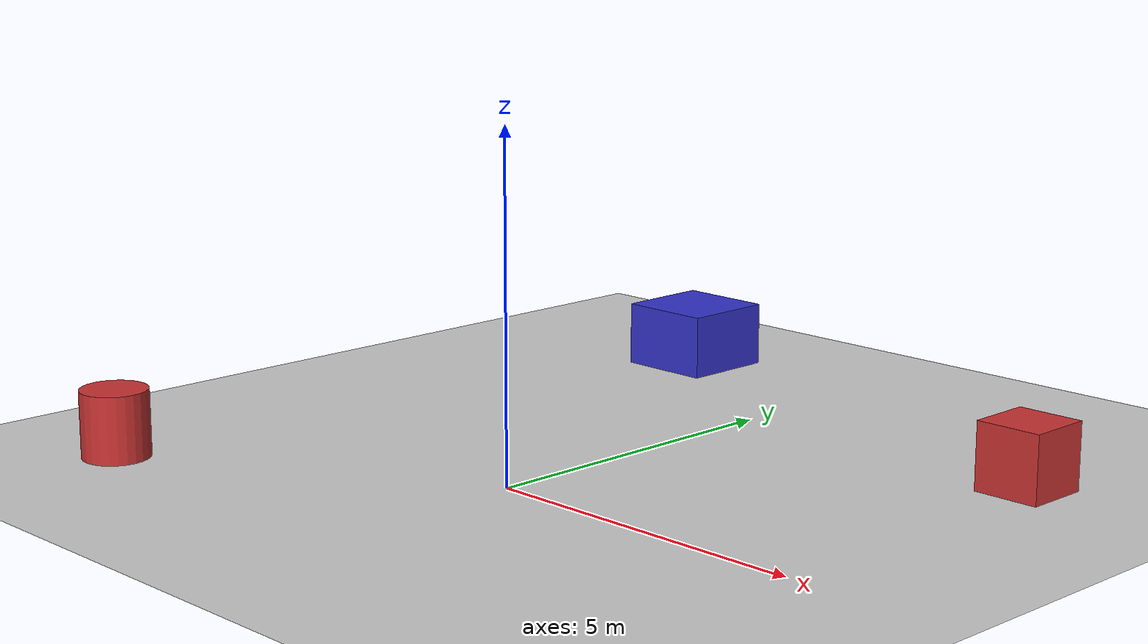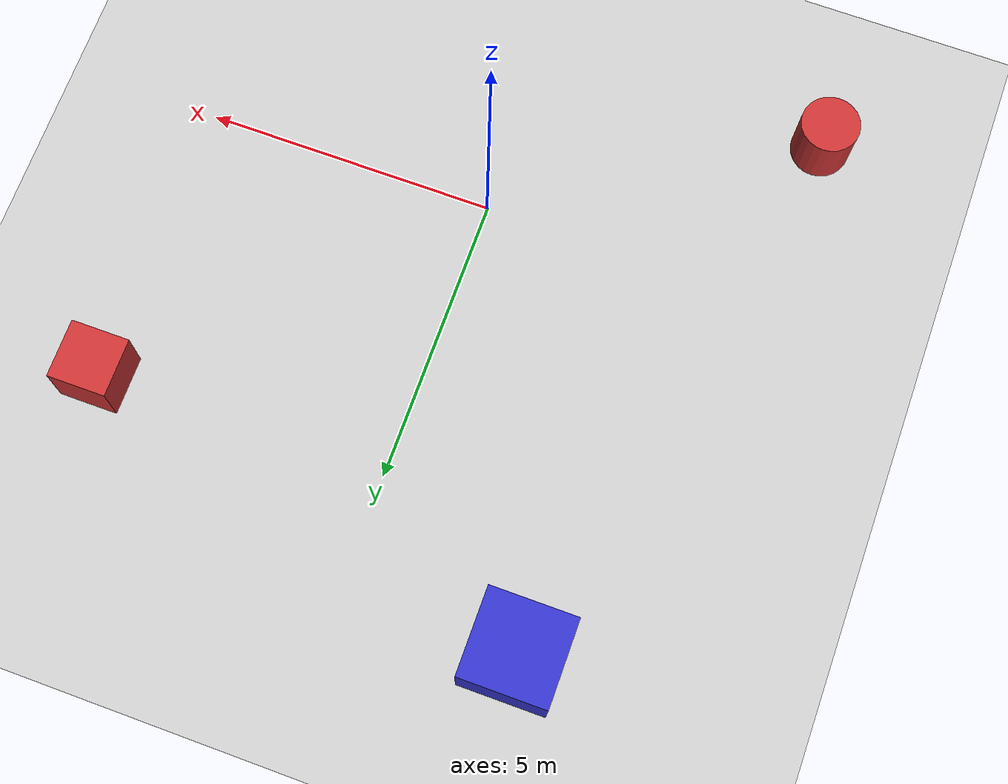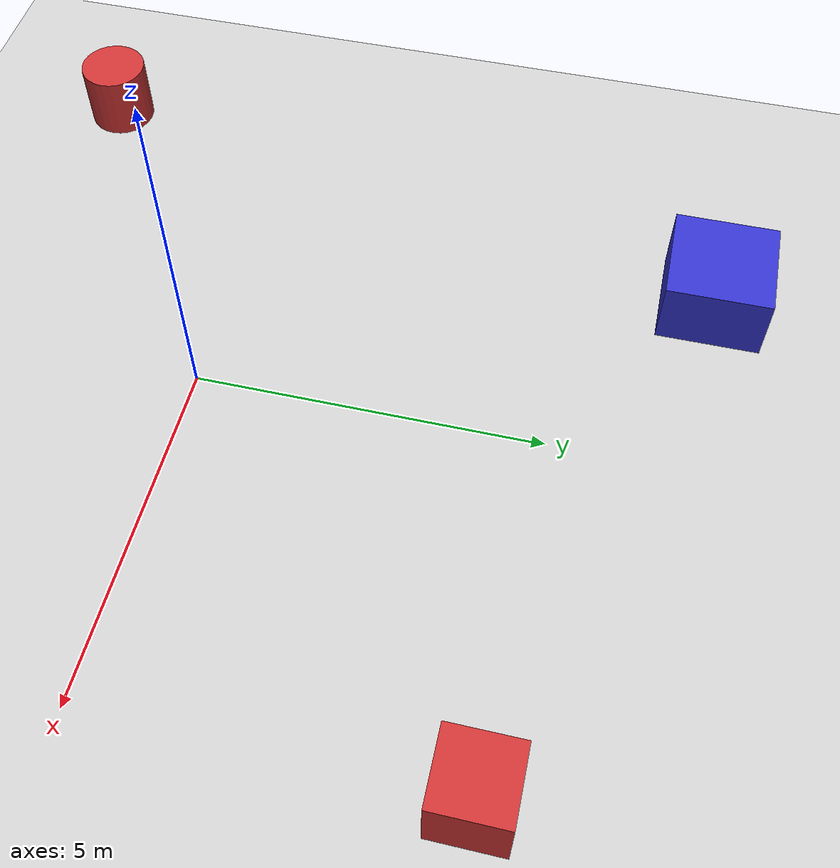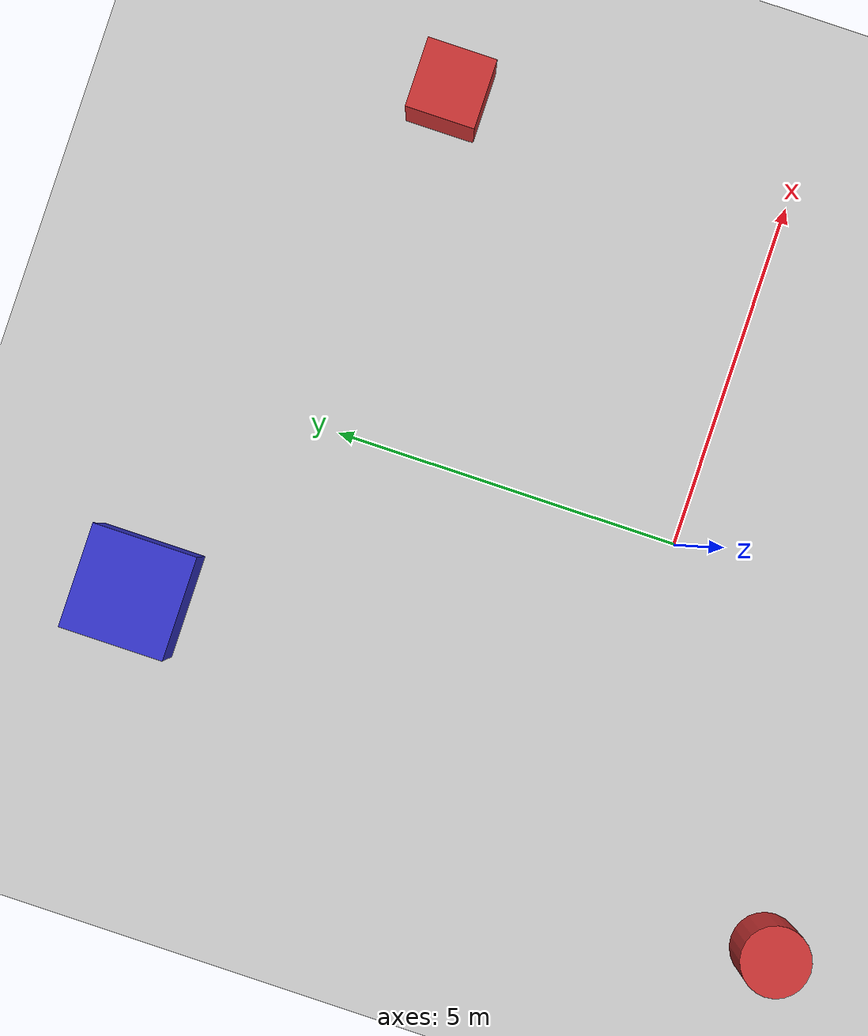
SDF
<?xml version="1.0"?>
<sdf version="1.6">
  <world name="rover_world">
    <include>
      <uri>model://sun</uri>
    </include>

    <include>
      <uri>model://ground_plane</uri>
    </include>

    <!-- Obstacle 1: Red Box -->
    <model name="obstacle1">
      <static>true</static>
      <pose>5 5 0.5 0 0 0</pose>
      <link name="link">
        <collision name="collision">
          <geometry>
            <box>
              <size>1 1 1</size>
            </box>
          </geometry>
        </collision>
        <visual name="visual">
          <geometry>
            <box>
              <size>1 1 1</size>
            </box>
          </geometry>
          <material>
            <ambient>0.8 0.2 0.2 1</ambient>
            <diffuse>0.8 0.2 0.2 1</diffuse>
          </material>
        </visual>
      </link>
    </model>

    <!-- Obstacle 2: Blue Box -->
    <model name="obstacle2">
      <static>true</static>
      <pose>-3 7 0.5 0 0 0</pose>
      <link name="link">
        <collision name="collision">
          <geometry>
            <box>
              <size>1.5 1.5 1</size>
            </box>
          </geometry>
        </collision>
        <visual name="visual">
          <geometry>
            <box>
              <size>1.5 1.5 1</size>
            </box>
          </geometry>
          <material>
            <ambient>0.2 0.2 0.8 1</ambient>
            <diffuse>0.2 0.2 0.8 1</diffuse>
          </material>
        </visual>
      </link>
    </model>

    <!-- Obstacle 3: Red Cylinder -->
    <model name="obstacle3">
      <static>true</static>
      <pose>-5 -3 0.5 0 0 0</pose>
      <link name="link">
        <collision name="collision">
          <geometry>
            <cylinder>
              <radius>0.5</radius>
              <length>1.0</length>
            </cylinder>
          </geometry>
        </collision>
        <visual name="visual">
          <geometry>
            <cylinder>
              <radius>0.5</radius>
              <length>1.0</length>
            </cylinder>
          </geometry>
          <material>
            <ambient>0.8 0.2 0.2 1</ambient>
            <diffuse>0.8 0.2 0.2 1</diffuse>
          </material>
        </visual>
      </link>
    </model>

    <physics name="default_physics" default="true" type="ode">
      <max_step_size>0.001</max_step_size>
      <real_time_factor>1.0</real_time_factor>
      <real_time_update_rate>1000.0</real_time_update_rate>
    </physics>

    <scene>
      <ambient>0.4 0.4 0.4 1</ambient>
      <background>0.7 0.7 0.7 1</background>
      <shadows>true</shadows>
    </scene>
  </world>
</sdf>
